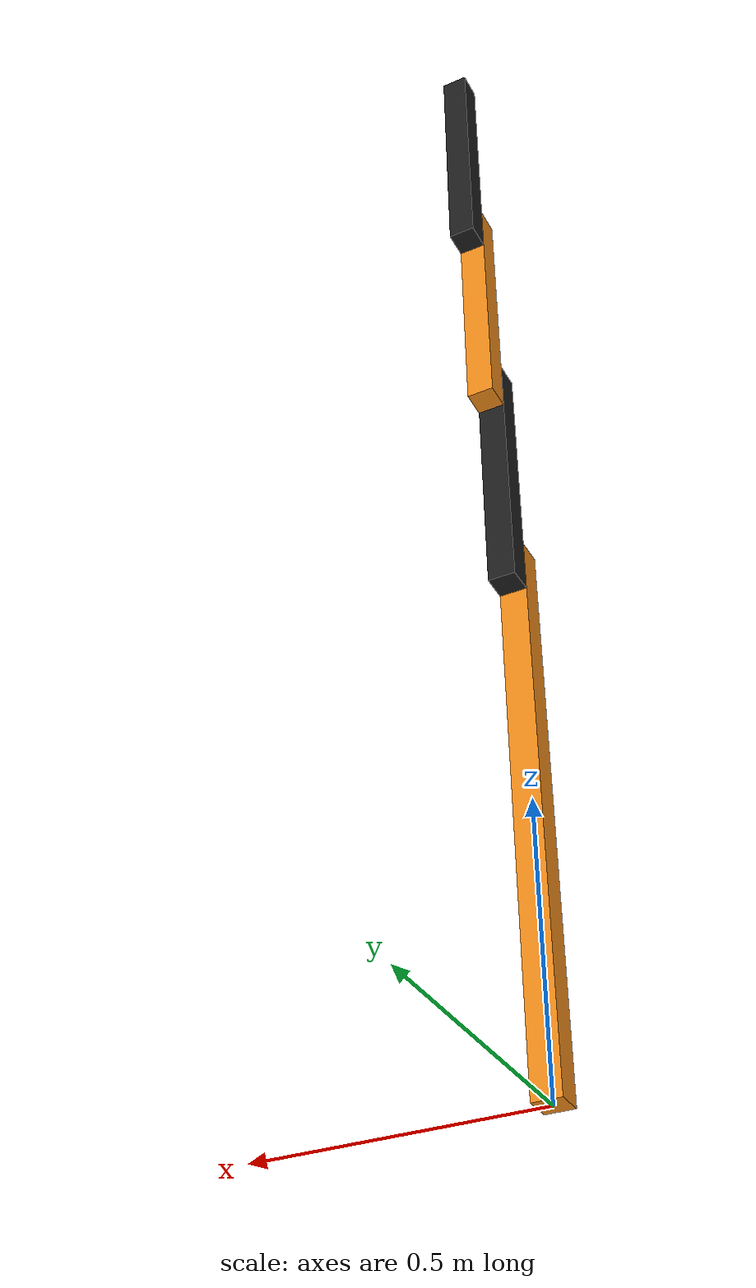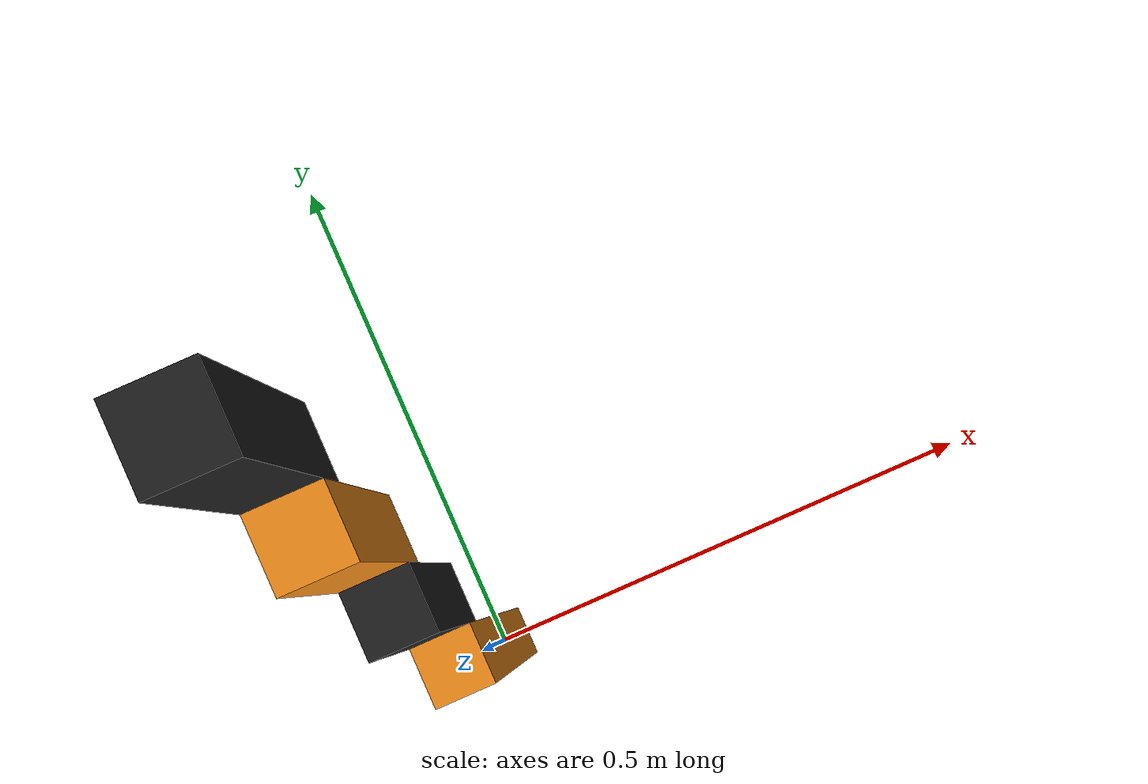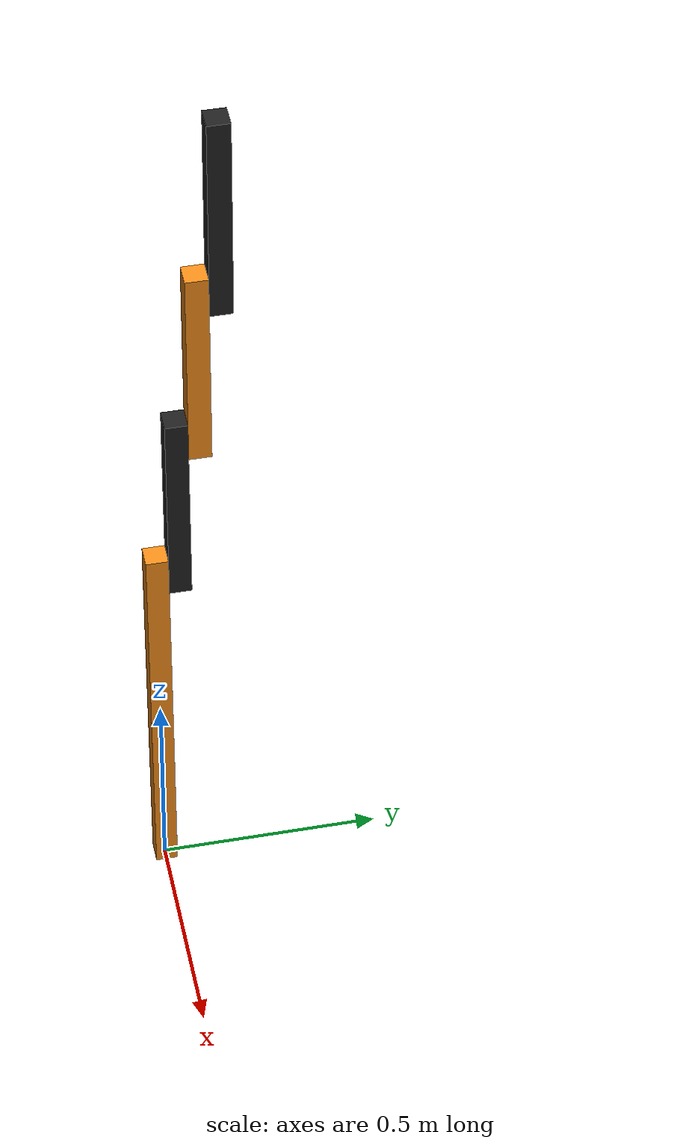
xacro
<?xml version="1.0"?>
<!-- Revolute-Revolute-Revolute Manipulator -->
<robot xmlns:xacro="http://www.ros.org/wiki/xacro" name="simple_robot_arm">

  <!-- Constants for robot dimensions -->
  <xacro:property name="PI" value="3.1415926535897931"/>
  <xacro:property name="mass" value="1" /> <!-- arbitrary value for mass -->
  <xacro:property name="width" value="0.05" /> <!-- Square dimensions (widthxwidth) of beams -->
  <xacro:property name="height1" value="1" /> <!-- Link 1 -->
  <xacro:property name="height2" value="0.5" /> <!-- Link 2 -->
  <xacro:property name="height3" value="0.5" /> <!-- Link 3 -->
  <xacro:property name="height4" value="0.5" /> <!-- Link 4 -->
  <xacro:property name="axel_offset" value="0.05" /> <!-- Space btw top of beam and the each joint -->

  <!-- Include rviz materials list-->
  <xacro:include filename="$(find robot_description)/robots/materials.xacro" />

  <xacro:include filename="$(find robot_description)/ros2_control/robot_ros2_control.urdf.xacro"/>
  <xacro:arm_ros2_control />
  <xacro:include filename="$(find robot_description)/ros2_control/gazebo_sim_ros2_control.urdf.xacro"/>

  <!-- Used for fixing robot to Gazebo 'base_link' -->
  <link name="world"/>

  <joint name="fixed" type="fixed">
    <parent link="world"/>
    <child link="link1"/>
  </joint>

  <!-- Base Link -->
  <link name="link1">
    <collision>
      <origin xyz="0 0 ${height1/2}" rpy="0 0 0"/>
      <geometry>
	      <box size="${width} ${width} ${height1}"/>
      </geometry>
    </collision>

    <visual>
      <origin xyz="0 0 ${height1/2}" rpy="0 0 0"/>
      <geometry>
	      <box size="${width} ${width} ${height1}"/>
      </geometry>
      <material name="orange"/>
    </visual>

    <inertial>
      <origin xyz="0 0 ${height1/2}" rpy="0 0 0"/>
      <mass value="${mass}"/>
      <inertia
        ixx="${mass / 12.0 * (width*width + height1*height1)}" ixy="0.0" ixz="0.0"
        iyy="${mass / 12.0 * (height1*height1 + width*width)}" iyz="0.0"
        izz="${mass / 12.0 * (width*width + width*width)}"/>
      </inertial>
  </link>

  <joint name="joint1" type="continuous">
    <parent link="link1"/>
    <child link="link2"/>
    <origin xyz="0 ${width} ${height1 - axel_offset}" rpy="0 0 0"/>
    <axis xyz="0 1 0"/>
    <dynamics damping="0.7"/>
  </joint>

  <!-- Middle Link -->
  <link name="link2">
    <collision>
      <origin xyz="0 0 ${height2/2 - axel_offset}" rpy="0 0 0"/>
      <geometry>
	      <box size="${width} ${width} ${height2}"/>
      </geometry>
    </collision>

    <visual>
      <origin xyz="0 0 ${height2/2 - axel_offset}" rpy="0 0 0"/>
      <geometry>
	      <box size="${width} ${width} ${height2}"/>
      </geometry>
      <material name="black"/>
    </visual>

    <inertial>
      <origin xyz="0 0 ${height2/2 - axel_offset}" rpy="0 0 0"/>
      <mass value="${mass}"/>
      <inertia
        ixx="${mass / 12.0 * (width*width + height2*height2)}" ixy="0.0" ixz="0.0"
        iyy="${mass / 12.0 * (height2*height2 + width*width)}" iyz="0.0"
        izz="${mass / 12.0 * (width*width + width*width)}"/>
      </inertial>
  </link>

  <joint name="joint2" type="continuous">
    <parent link="link2"/>
    <child link="link3"/>
    <origin xyz="0 ${width} ${height2 - axel_offset*2}" rpy="0 0 0"/>
    <axis xyz="0 1 0"/>
    <dynamics damping="0.7"/>
  </joint>

  <!-- Top Link -->
  <link name="link3">
    <collision>
      <origin xyz="0 0 ${height3/2 - axel_offset}" rpy="0 0 0"/>
      <geometry>
	      <box size="${width} ${width} ${height3}"/>
      </geometry>
    </collision>

    <visual>
      <origin xyz="0 0 ${height3/2 - axel_offset}" rpy="0 0 0"/>
      <geometry>
	      <box size="${width} ${width} ${height3}"/>
      </geometry>
      <material name="orange"/>
    </visual>

    <inertial>
      <origin xyz="0 0 ${height3/2 - axel_offset}" rpy="0 0 0"/>
      <mass value="${mass}"/>
      <inertia
        ixx="${mass / 12.0 * (width*width + height3*height3)}" ixy="0.0" ixz="0.0"
        iyy="${mass / 12.0 * (height3*height3 + width*width)}" iyz="0.0"
        izz="${mass / 12.0 * (width*width + width*width)}"/>
      </inertial>
  </link>

  <joint name="joint3" type="continuous">
    <parent link="link3"/>
    <child link="link4"/>
    <origin xyz="0 ${width} ${height3 - axel_offset*2}" rpy="0 0 0"/>
    <axis xyz="0 1 0"/>
    <dynamics damping="0.7"/>
  </joint>

  <!-- End Link -->
  <link name="link4">
    <collision>
      <origin xyz="0 0 ${height4/2 - axel_offset}" rpy="0 0 0"/>
      <geometry>
	      <box size="${width} ${width} ${height4}"/>
      </geometry>
    </collision>

    <visual>
      <origin xyz="0 0 ${height4/2 - axel_offset}" rpy="0 0 0"/>
      <geometry>
	      <box size="${width} ${width} ${height4}"/>
      </geometry>
      <material name="black"/>
    </visual>

    <inertial>
      <origin xyz="0 0 ${height4/2 - axel_offset}" rpy="0 0 0"/>
      <mass value="${mass}"/>
      <inertia
        ixx="${mass / 12.0 * (width*width + height4*height4)}" ixy="0.0" ixz="0.0"
        iyy="${mass / 12.0 * (height4*height4 + width*width)}" iyz="0.0"
        izz="${mass / 12.0 * (width*width + width*width)}"/>
      </inertial>
  </link>
</robot>
